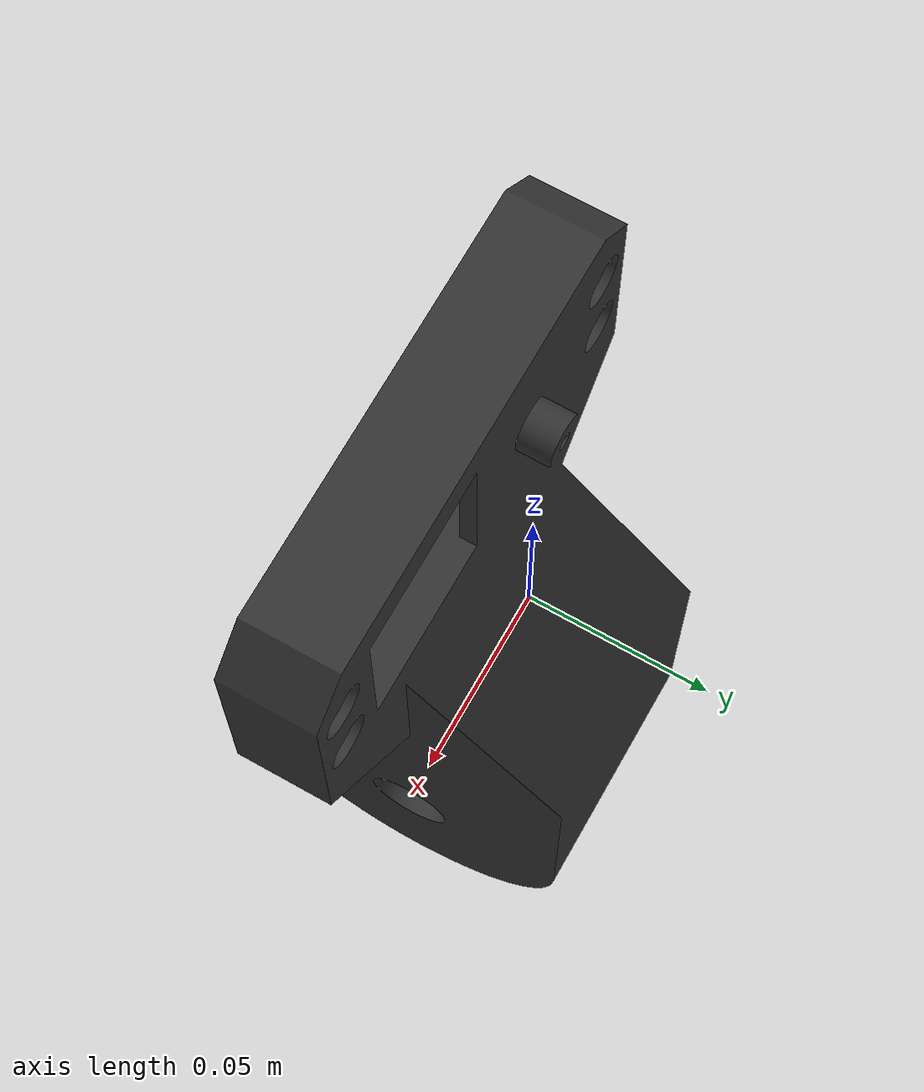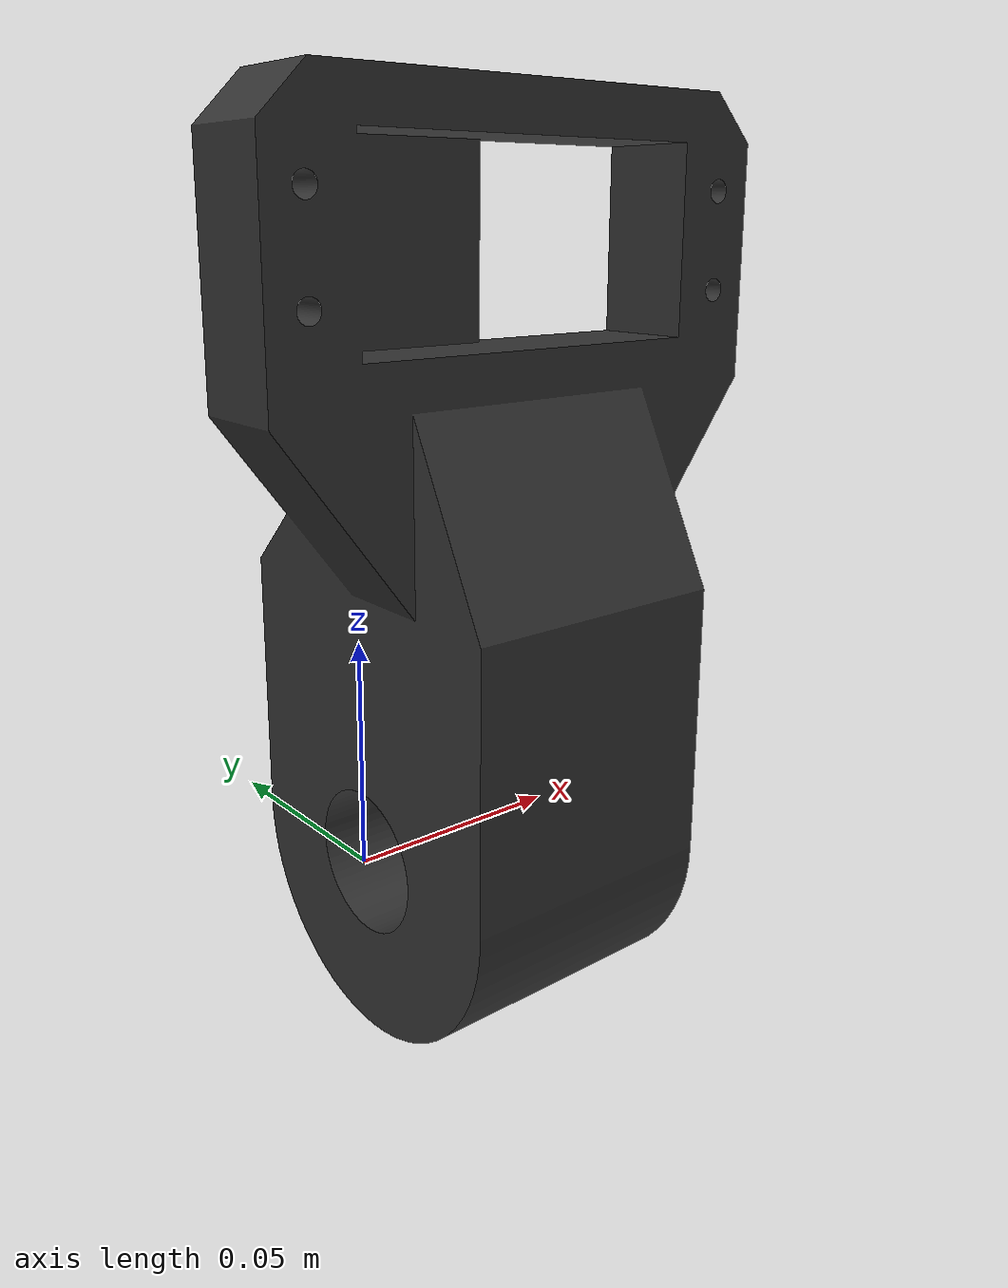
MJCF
<mujoco>
    <compiler meshdir="../meshes/ForeArm" angle="radian"/>

    <include file="materials.xml" />

    <default>
        <default class="visual">
            <geom euler="-1.5708 0 0" />
        </default>
    </default>

    <asset>
        <mesh name="ForeArm" file="ForeArm.stl" scale="2.0 2.0 2.0" />
    </asset>

    <worldbody>
        <body name="ForeArm" pos="0 0 0.0">
            <geom type="mesh" mesh="ForeArm" class="visual" material="black" mass="0.2" contype="1" conaffinity="1"  />

        </body>
    </worldbody>
</mujoco>

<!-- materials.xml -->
<mujoco>

    <default>
        <mesh scale="0.001 0.001 0.001" />
        <geom contype="0" conaffinity="0" mass="0" />
    </default>

    <asset>
        <texture type="skybox" builtin="gradient" rgb1=".3 .5 .7" rgb2="1 1 1" width="32" height="512"/>
        <material name="blue" rgba="0.0 0.3 0.7 0.9" />
        <material name="black" rgba="0.2 0.2 0.2 0.9" />
        <material name="deep_black" rgba="0.1 0.1 0.1 0.9" />
        <material name="silver" rgba="0.5 0.5 0.5 1" />
        <material name="brown" rgba="1 0.7 0.5 0.9" />
    </asset>
</mujoco>
